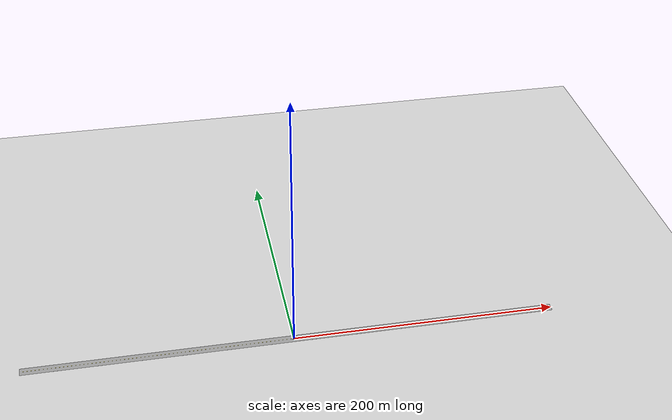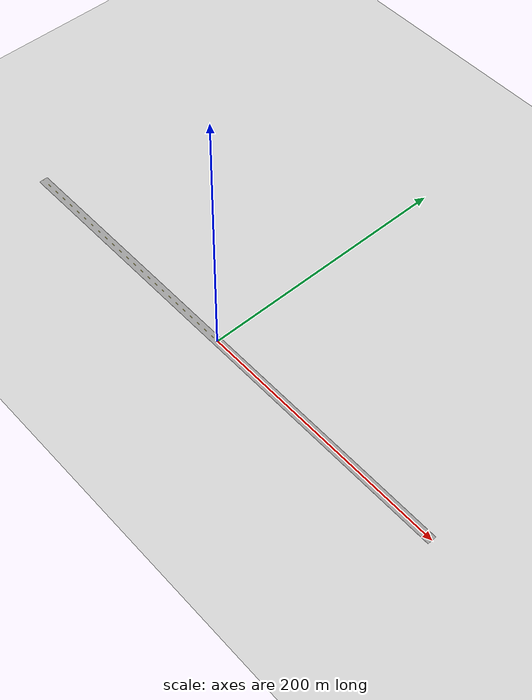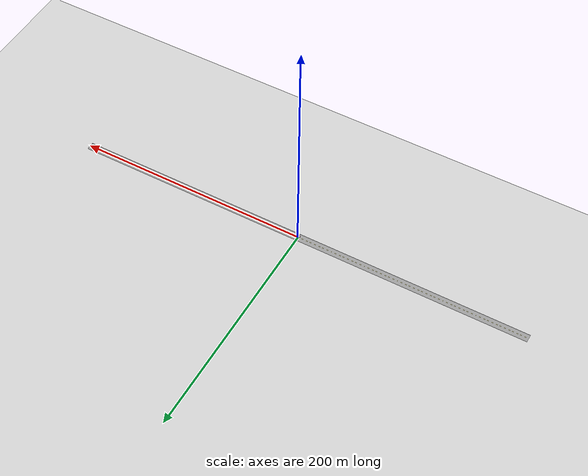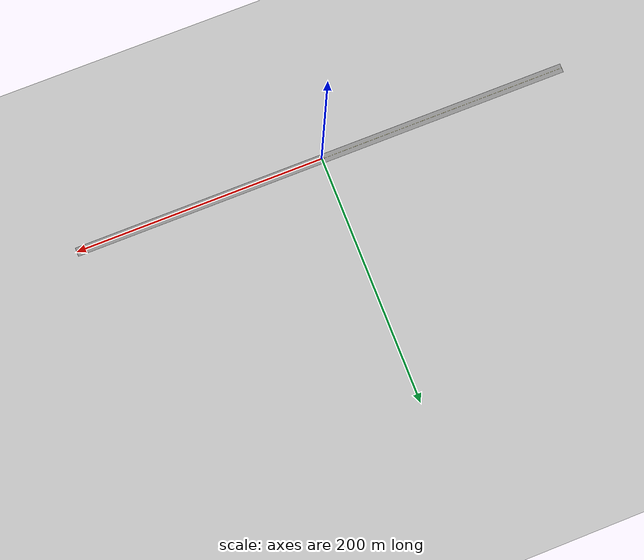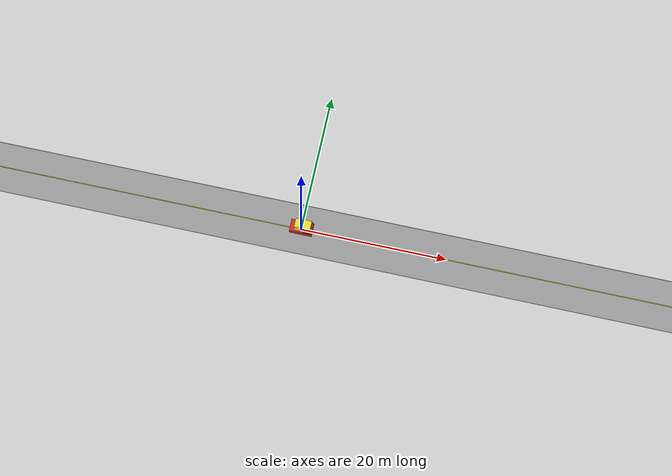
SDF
<?xml version="1.0" ?>
<sdf version="1.6">
  <world name="pothole_world">

    <gravity>0 0 -9.81</gravity>

    <!-- Ground plane -->
    <include>
      <uri>model://ground_plane</uri>
    </include>
    <include>
      <uri>model://simple_vehicle</uri>
      <pose>0 0 0 0 0 0</pose>
    </include>

    <!-- Sun -->
    <include>
      <uri>model://sun</uri>
    </include>

    <!-- Long road segment: 1-way 2-lane road -->
    <model name="road_segment">
      <static>true</static>
      <link name="road_link">
        <pose>0 0 0.01 0 0 0</pose>

        <collision name="road_collision">
          <geometry>
            <box>
              <!-- length x, width y, height z -->
              <size>400 7 0.02</size>
            </box>
          </geometry>
          <surface>
            <friction>
              <ode>
                <mu>1.0</mu>
                <mu2>1.0</mu2>
              </ode>
            </friction>
          </surface>
        </collision>

        <visual name="road_visual">
          <geometry>
            <box>
              <size>400 7 0.02</size>
            </box>
          </geometry>
          <material>
            <script>
              <uri>file://media/materials/scripts/gazebo.material</uri>
              <name>Gazebo/Gray</name>
            </script>
          </material>
        </visual>

        <!-- Center line between 2 lanes -->
        <visual name="center_line">
          <pose>0 0 0.021 0 0 0</pose>
          <geometry>
            <box>
              <size>400 0.1 0.002</size>
            </box>
          </geometry>
          <material>
            <script>
              <uri>file://media/materials/scripts/gazebo.material</uri>
              <name>Gazebo/Yellow</name>
            </script>
          </material>
        </visual>

        <!-- Left edge line -->
        <visual name="left_edge">
          <pose>0 3.5 0.021 0 0 0</pose>
          <geometry>
            <box>
              <size>400 0.05 0.002</size>
            </box>
          </geometry>
          <material>
            <script>
              <uri>file://media/materials/scripts/gazebo.material</uri>
              <name>Gazebo/White</name>
            </script>
          </material>
        </visual>

        <!-- Right edge line -->
        <visual name="right_edge">
          <pose>0 -3.5 0.021 0 0 0</pose>
          <geometry>
            <box>
              <size>400 0.05 0.002</size>
            </box>
          </geometry>
          <material>
            <script>
              <uri>file://media/materials/scripts/gazebo.material</uri>
              <name>Gazebo/White</name>
            </script>
          </material>
        </visual>

      </link>
    </model>

  </world>
</sdf>

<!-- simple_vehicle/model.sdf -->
<sdf version="1.6">
  <model name="simple_vehicle">
    <!-- Static for now -->
    <static>true</static>

    <link name="vehicle_link">
      <!-- Rough inertial -->
      <inertial>
        <mass>800</mass>
        <inertia>
          <ixx>100</ixx>
          <iyy>300</iyy>
          <izz>350</izz>
          <ixy>0</ixy>
          <ixz>0</ixz>
          <iyz>0</iyz>
        </inertia>
      </inertial>

      <!-- ===================== COLLISION BODY (x2) ===================== -->
      <!-- Original: size 1.55 x 0.85 x 1.05, pose z=0.525 -->
      <!-- New (×2): size 3.10 x 1.70 x 2.10, pose z=1.05 -->
      <collision name="collision_body">
        <pose>0 0 1.05 0 0 0</pose>
        <geometry>
          <box>
            <size>3.10 1.70 2.10</size>
          </box>
        </geometry>
      </collision>

      <!-- ===================== VISUALS: BODY (x2) ===================== -->

      <!-- Lower chassis -->
      <!-- Original: size 1.55 x 0.85 x 0.35, pose z=0.35 -->
      <!-- New:      size 3.10 x 1.70 x 0.70, pose z=0.70 -->
      <visual name="body_lower">
        <pose>0 0 0.70 0 0 0</pose>
        <geometry>
          <box>
            <size>3.10 1.70 0.70</size>
          </box>
        </geometry>
        <material>
          <script>
            <uri>file://media/materials/scripts/gazebo.material</uri>
            <!-- make it BRIGHT RED so we can SEE that it changed -->
            <name>Gazebo/Red</name>
          </script>
        </material>
      </visual>

      <!-- Upper cabin -->
      <!-- Original: size 1.10 x 0.65 x 0.70, pose x=0.10, z=0.875 -->
      <!-- New:      size 2.20 x 1.30 x 1.40, pose x=0.20, z=1.75 -->
      <visual name="body_upper">
        <pose>0.20 0 1.75 0 0 0</pose>
        <geometry>
          <box>
            <size>2.20 1.30 1.40</size>
          </box>
        </geometry>
        <material>
          <script>
            <uri>file://media/materials/scripts/gazebo.material</uri>
            <name>Gazebo/Yellow</name>
          </script>
        </material>
      </visual>

      <!-- Hood -->
      <!-- Original: size 0.55 x 0.80 x 0.25, pose x=0.45, z=0.55 -->
      <!-- New:      size 1.10 x 1.60 x 0.50, pose x=0.90, z=1.10 -->
      <visual name="body_hood">
        <pose>0.90 0 1.10 0 0 0</pose>
        <geometry>
          <box>
            <size>1.10 1.60 0.50</size>
          </box>
        </geometry>
        <material>
          <script>
            <uri>file://media/materials/scripts/gazebo.material</uri>
            <name>Gazebo/Red</name>
          </script>
        </material>
      </visual>

      <!-- ===================== WHEELS (x2, no arches) ===================== -->

      <!-- FRONT LEFT wheel (x+, y+) -->
      <visual name="wheel_fl">
        <pose>1.15 0.60 0.35 1.5708 0 0</pose>
        <geometry>
          <cylinder>
            <radius>0.35</radius>
            <length>0.20</length>
          </cylinder>
        </geometry>
        <material>
          <script>
            <uri>file://media/materials/scripts/gazebo.material</uri>
            <name>Gazebo/Black</name>
          </script>
        </material>
      </visual>

      <!-- FRONT RIGHT wheel (x+, y-) -->
      <visual name="wheel_fr">
        <pose>1.15 -0.60 0.35 1.5708 0 0</pose>
        <geometry>
          <cylinder>
            <radius>0.35</radius>
            <length>0.20</length>
          </cylinder>
        </geometry>
        <material>
          <script>
            <uri>file://media/materials/scripts/gazebo.material</uri>
            <name>Gazebo/Black</name>
          </script>
        </material>
      </visual>

      <!-- REAR LEFT wheel (x-, y+) -->
      <visual name="wheel_rl">
        <pose>-1.15 0.60 0.35 1.5708 0 0</pose>
        <geometry>
          <cylinder>
            <radius>0.35</radius>
            <length>0.20</length>
          </cylinder>
        </geometry>
        <material>
          <script>
            <uri>file://media/materials/scripts/gazebo.material</uri>
            <name>Gazebo/Black</name>
          </script>
        </material>
      </visual>

      <!-- REAR RIGHT wheel (x-, y-) -->
      <visual name="wheel_rr">
        <pose>-1.15 -0.60 0.35 1.5708 0 0</pose>
        <geometry>
          <cylinder>
            <radius>0.35</radius>
            <length>0.20</length>
          </cylinder>
        </geometry>
        <material>
          <script>
            <uri>file://media/materials/scripts/gazebo.material</uri>
            <name>Gazebo/Black</name>
          </script>
        </material>
      </visual>

    </link>
  </model>
</sdf>
